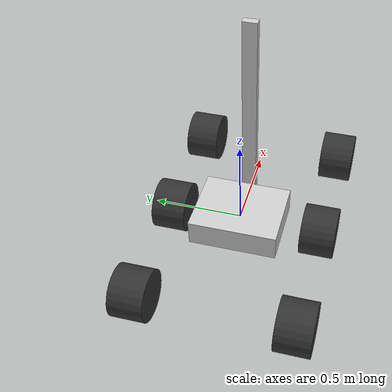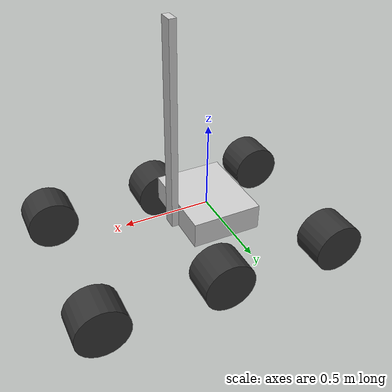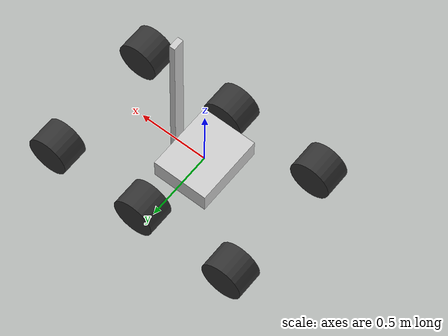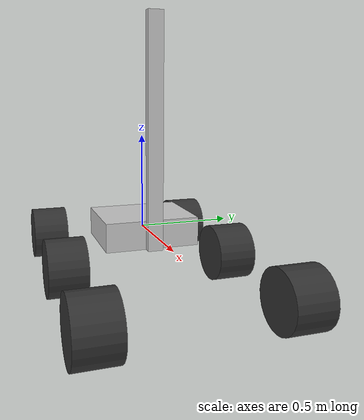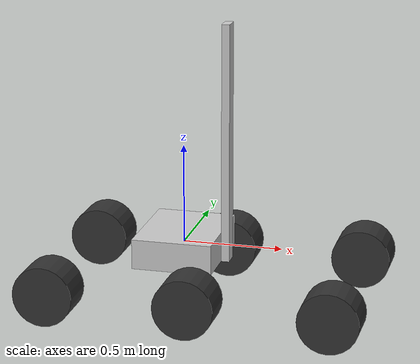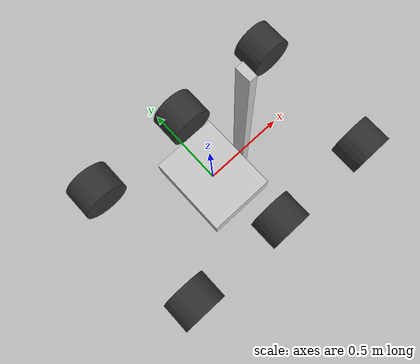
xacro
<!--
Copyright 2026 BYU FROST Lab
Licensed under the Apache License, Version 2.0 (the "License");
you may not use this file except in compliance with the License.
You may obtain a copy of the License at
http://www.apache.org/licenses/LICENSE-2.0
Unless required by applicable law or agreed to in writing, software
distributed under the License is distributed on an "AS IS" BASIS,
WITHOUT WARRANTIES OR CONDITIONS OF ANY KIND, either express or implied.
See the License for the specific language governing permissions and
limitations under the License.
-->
<?xml version="1.0"?>

<robot name="rover" xmlns:xacro="http://www.ros.org/wiki/xacro">

  <xacro:arg name="tf_prefix" default="" />
  <xacro:property name="tf_prefix" value="$(arg tf_prefix)" />

  <xacro:include filename="$(find coug_description)/urdf/common.xacro" />

  <xacro:property name="base_height" value="0.15" />
  <xacro:property name="base_width" value="0.5" />
  <xacro:property name="base_length" value="0.4" />
  <xacro:property name="base_mass" value="18.0" />

  <xacro:property name="wheel_radius" value="0.15" />
  <xacro:property name="wheel_width" value="0.2" />
  <xacro:property name="middle_wheel_xoff" value="0.135" />
  <xacro:property name="wheel_xoff" value="0.7" />
  <xacro:property name="wheel_yoff" value="${base_width/2 + 0.1 + wheel_width/2}" />
  <xacro:property name="wheel_zoff" value="0.15" />
  <xacro:property name="wheel_mass" value="2.5" />

  <xacro:property name="mast_height" value="1.2" />
  <xacro:property name="mast_width" value="0.08" />
  <xacro:property name="mast_length" value="0.04" />
  <xacro:property name="mast_mass" value="1.5" />

  <xacro:property name="depth_camera_xoff" value="0.12" />
  <xacro:property name="depth_camera_zoff" value="0.05" />
  <xacro:property name="depth_camera_pitch" value="${radians(6)}" />

  <xacro:property name="rover_depth_camera_xyz" value="${base_length/2 + mast_length/2 + depth_camera_xoff} 0 ${mast_height/2 - base_height/2 + depth_camera_zoff}" />
  <xacro:property name="rover_depth_camera_rpy" value="0 ${depth_camera_pitch} 0" />

  <material name="LightGray">
    <color rgba="0.8 0.8 0.8 1" />
  </material>
  <material name="DarkGray">
    <color rgba="0.2 0.2 0.2 1" />
  </material>

  <!-- TODO: Compare this with the new 2026 URDF -->

  <!-- Chassis -->
  <link name="${tf_prefix}base_link">
    <xacro:box_shape color="LightGray" x="${base_length}" y="${base_width}" z="${base_height}" mass="${base_mass}" />
  </link>

  <!-- Wheels -->
  <xacro:macro name="wheel" params="prefix xoff y_reflect">
    <joint name="${prefix}_wheel_joint" type="continuous">
      <parent link="${tf_prefix}base_link" />
      <child link="${tf_prefix}${prefix}_wheel_link" />
      <origin xyz="${middle_wheel_xoff + xoff} ${y_reflect*wheel_yoff} ${-wheel_zoff}" rpy="0 0 0" />
      <axis xyz="0 1 0" />
      <dynamics damping="0.05" friction="0.1" />
    </joint>
    <link name="${tf_prefix}${prefix}_wheel_link">
      <xacro:cylinder_shape color="DarkGray" radius="${wheel_radius}" length="${wheel_width}" rpy="${radians(90)} 0 0" mass="${wheel_mass}" />
    </link>
  </xacro:macro>

  <xacro:wheel prefix="front_left" xoff="${wheel_xoff}" y_reflect="1" />
  <xacro:wheel prefix="front_right" xoff="${wheel_xoff}" y_reflect="-1" />
  <xacro:wheel prefix="middle_left" xoff="0" y_reflect="1" />
  <xacro:wheel prefix="middle_right" xoff="0" y_reflect="-1" />
  <xacro:wheel prefix="rear_left" xoff="${-wheel_xoff}" y_reflect="1" />
  <xacro:wheel prefix="rear_right" xoff="${-wheel_xoff}" y_reflect="-1" />

  <!-- Mast -->
  <xacro:fixed_joint name="mast" xyz="${base_length/2 + mast_length/2} 0 ${mast_height/2 - base_height/2}" />
  <link name="${tf_prefix}mast_link">
    <xacro:box_shape color="LightGray" x="${mast_length}" y="${mast_width}" z="${mast_height}" mass="${mast_mass}" />
  </link>

  <!-- Sensors -->
  <xacro:sensor_frame name="imu" parent="depth_camera" />
  <xacro:sensor_frame name="gps" xyz="${-base_length/2} 0 ${base_height/2}" />
  <xacro:sensor_frame name="depth_camera" parent="mast" xyz="${depth_camera_xoff} 0 ${depth_camera_zoff}" rpy="${rover_depth_camera_rpy}" />
  <xacro:optical_frame name="depth_camera" />

</robot>

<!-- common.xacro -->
<robot xmlns:xacro="http://www.ros.org/wiki/xacro">

  <xacro:macro name="box_inertial" params="x y z mass xyz:='0 0 0' rpy:='0 0 0'">
    <inertial>
      <origin xyz="${xyz}" rpy="${rpy}" />
      <mass value="${mass}" />
      <inertia ixx="${mass*(y*y + z*z)/12}" ixy="0" ixz="0" iyy="${mass*(x*x + z*z)/12}" iyz="0" izz="${mass*(x*x + y*y)/12}" />
    </inertial>
  </xacro:macro>

  <xacro:macro name="box_shape" params="color x y z xyz:='0 0 0' rpy:='0 0 0' mass:=0">
    <visual>
      <origin xyz="${xyz}" rpy="${rpy}" />
      <geometry>
        <box size="${x} ${y} ${z}" />
      </geometry>
      <material name="${color}" />
    </visual>
    <xacro:if value="${mass > 0}">
      <collision>
        <origin xyz="${xyz}" rpy="${rpy}" />
        <geometry>
          <box size="${x} ${y} ${z}" />
        </geometry>
      </collision>
      <xacro:box_inertial x="${x}" y="${y}" z="${z}" mass="${mass}" xyz="${xyz}" rpy="${rpy}" />
    </xacro:if>
  </xacro:macro>

  <xacro:macro name="cylinder_inertial" params="radius length mass xyz:='0 0 0' rpy:='0 0 0'">
    <inertial>
      <origin xyz="${xyz}" rpy="${rpy}" />
      <mass value="${mass}" />
      <inertia ixx="${mass*(3*radius*radius + length*length)/12}" ixy="0" ixz="0" iyy="${mass*(3*radius*radius + length*length)/12}" iyz="0" izz="${mass*radius*radius/2}" />
    </inertial>
  </xacro:macro>

  <xacro:macro name="cylinder_shape" params="color radius length xyz:='0 0 0' rpy:='0 0 0' mass:=0">
    <visual>
      <origin xyz="${xyz}" rpy="${rpy}" />
      <geometry>
        <cylinder radius="${radius}" length="${length}" />
      </geometry>
      <material name="${color}" />
    </visual>
    <xacro:if value="${mass > 0}">
      <collision>
        <origin xyz="${xyz}" rpy="${rpy}" />
        <geometry>
          <cylinder radius="${radius}" length="${length}" />
        </geometry>
      </collision>
      <xacro:cylinder_inertial radius="${radius}" length="${length}" mass="${mass}" xyz="${xyz}" rpy="${rpy}" />
    </xacro:if>
  </xacro:macro>

  <xacro:macro name="sphere_shape" params="color radius xyz:='0 0 0' rpy:='0 0 0' mass:=0">
    <visual>
      <origin xyz="${xyz}" rpy="${rpy}" />
      <geometry>
        <sphere radius="${radius}" />
      </geometry>
      <material name="${color}" />
    </visual>
    <xacro:if value="${mass > 0}">
      <collision>
        <origin xyz="${xyz}" rpy="${rpy}" />
        <geometry>
          <sphere radius="${radius}" />
        </geometry>
      </collision>
      <inertial>
        <origin xyz="${xyz}" rpy="${rpy}" />
        <mass value="${mass}" />
        <inertia ixx="${2*mass*radius*radius/5}" ixy="0" ixz="0" iyy="${2*mass*radius*radius/5}" iyz="0" izz="${2*mass*radius*radius/5}" />
      </inertial>
    </xacro:if>
  </xacro:macro>

  <xacro:macro name="fixed_joint" params="name parent:=base xyz:='0 0 0' rpy:='0 0 0'">
    <joint name="${name}_joint" type="fixed">
      <parent link="${tf_prefix}${parent}_link" />
      <child link="${tf_prefix}${name}_link" />
      <origin xyz="${xyz}" rpy="${rpy}" />
    </joint>
  </xacro:macro>

  <xacro:macro name="sensor_frame" params="name parent:=base xyz:='0 0 0' rpy:='0 0 0'">
    <xacro:fixed_joint name="${name}" parent="${parent}" xyz="${xyz}" rpy="${rpy}" />
    <link name="${tf_prefix}${name}_link" />
  </xacro:macro>

  <xacro:macro name="optical_frame" params="name">
    <xacro:sensor_frame name="${name}_optical" parent="${name}" rpy="${radians(-90)} 0 ${radians(-90)}" />
  </xacro:macro>

  <xacro:macro name="dvl_beams" params="layout">
    <xacro:if value="${layout == 'a50'}">
      <xacro:property name="yaws" value="${[-135, 135, 45, -45]}" />
    </xacro:if>
    <xacro:if value="${layout == 'holoocean'}">
      <xacro:property name="yaws" value="${[0, 90, 180, -90]}" />
    </xacro:if>
    <xacro:sensor_frame name="beam0" parent="dvl" rpy="0 ${radians(67.5)} ${radians(yaws[0])}" />
    <xacro:sensor_frame name="beam1" parent="dvl" rpy="0 ${radians(67.5)} ${radians(yaws[1])}" />
    <xacro:sensor_frame name="beam2" parent="dvl" rpy="0 ${radians(67.5)} ${radians(yaws[2])}" />
    <xacro:sensor_frame name="beam3" parent="dvl" rpy="0 ${radians(67.5)} ${radians(yaws[3])}" />
  </xacro:macro>

</robot>
